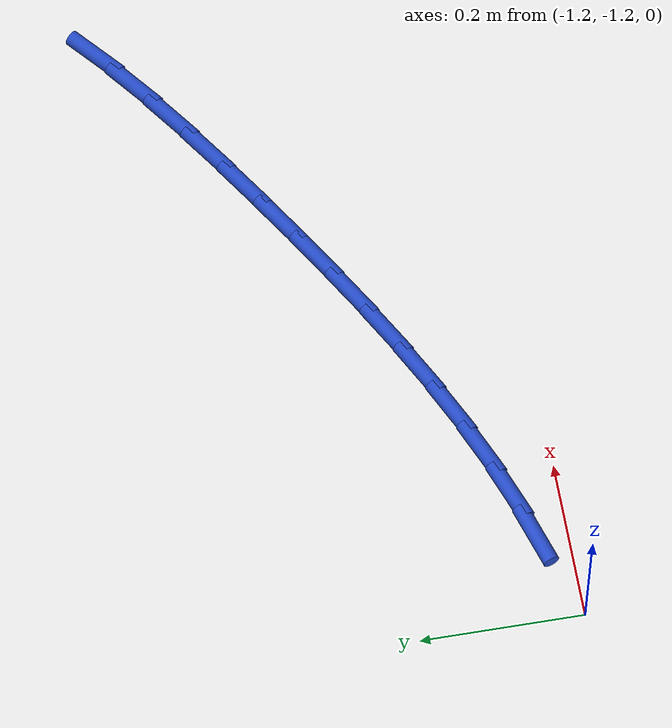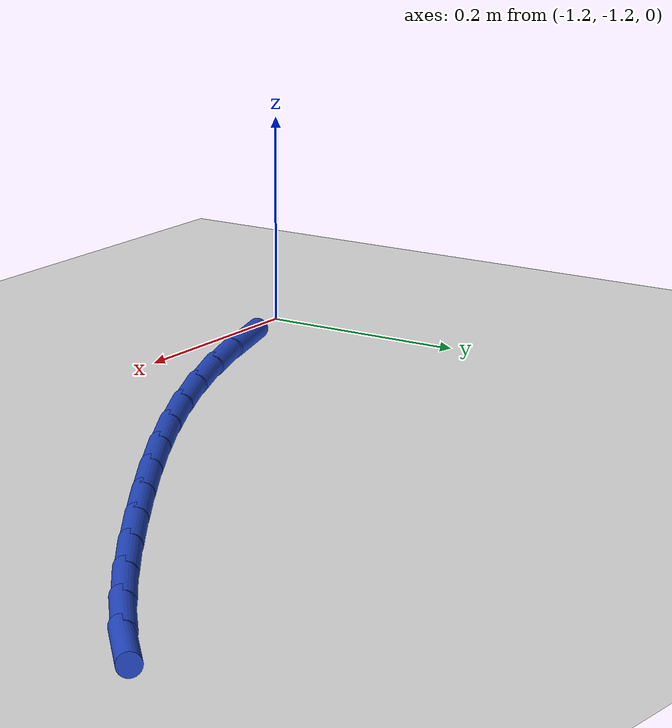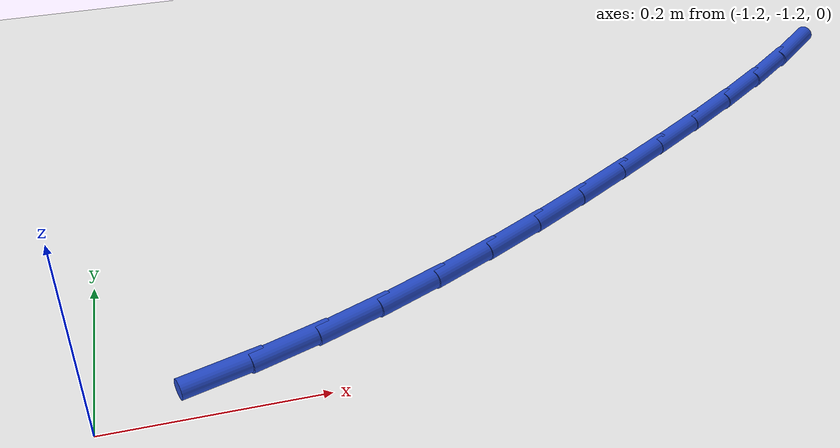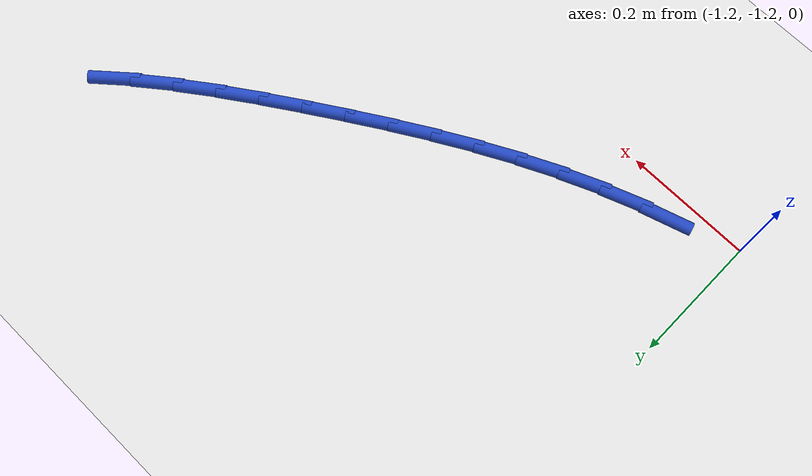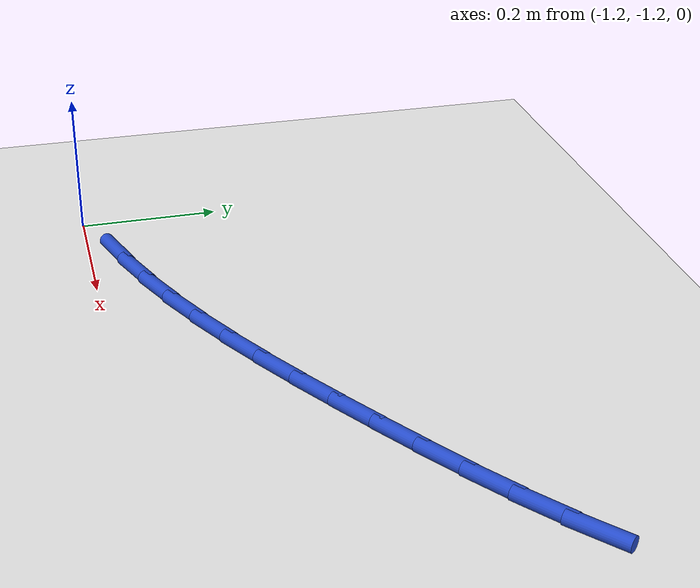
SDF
<sdf version="1.6">
 <world name="default">
  <model name="ground_plane">
   <static>1</static>
   <link name="link">
    <collision name="collision">
     <geometry><plane><normal>0 0 1</normal><size>100 100</size></plane></geometry>
     <surface><friction><ode><mu>100</mu><mu2>50</mu2></ode></friction></surface>
    </collision>
    <visual name="visual">
     <cast_shadows>0</cast_shadows>
     <geometry><plane><normal>0 0 1</normal><size>100 100</size></plane></geometry>
     <material>
      <script><uri>file://media/materials/scripts/gazebo.material</uri><name>Gazebo/WhiteGlow</name></script>
     </material>
    </visual>
   </link>
  </model>
  <model name="line">
   <link name="link_84">
    <pose>-1.0907373495085135 -1.1602485015638753 0.01 0 1.57 0.30592249337320293</pose>
    <collision name="collision">
     <geometry><cylinder><radius>0.01</radius><length>0.08</length></cylinder></geometry>
    </collision>
    <visual name="visual">
     <material>
      <script><name>Gazebo/Blue</name><uri>file://media/materials/scripts/gazebo.material</uri></script>
     </material>
     <geometry><cylinder><radius>0.01</radius><length>0.08</length></cylinder></geometry>
    </visual>
   </link>
   <link name="link_85">
    <pose>-1.028746569607572 -1.1406694919379672 0.01 0 1.57 0.3592306607450275</pose>
    <collision name="collision">
     <geometry><cylinder><radius>0.01</radius><length>0.08</length></cylinder></geometry>
    </collision>
    <visual name="visual">
     <material>
      <script><name>Gazebo/Blue</name><uri>file://media/materials/scripts/gazebo.material</uri></script>
     </material>
     <geometry><cylinder><radius>0.01</radius><length>0.08</length></cylinder></geometry>
    </visual>
   </link>
   <link name="link_86">
    <pose>-0.9677904289458146 -1.1177789514070133 0.01 0 1.57 0.40653397699495586</pose>
    <collision name="collision">
     <geometry><cylinder><radius>0.01</radius><length>0.08</length></cylinder></geometry>
    </collision>
    <visual name="visual">
     <material>
      <script><name>Gazebo/Blue</name><uri>file://media/materials/scripts/gazebo.material</uri></script>
     </material>
     <geometry><cylinder><radius>0.01</radius><length>0.08</length></cylinder></geometry>
    </visual>
   </link>
   <link name="link_87">
    <pose>-0.9077856111844519 -1.0919458802660438 0.01 0 1.57 0.44780761443154643</pose>
    <collision name="collision">
     <geometry><cylinder><radius>0.01</radius><length>0.08</length></cylinder></geometry>
    </collision>
    <visual name="visual">
     <material>
      <script><name>Gazebo/Blue</name><uri>file://media/materials/scripts/gazebo.material</uri></script>
     </material>
     <geometry><cylinder><radius>0.01</radius><length>0.08</length></cylinder></geometry>
    </visual>
   </link>
   <link name="link_88">
    <pose>-0.8486487999846958 -1.0635392788100906 0.01 0 1.57 0.4831281210149153</pose>
    <collision name="collision">
     <geometry><cylinder><radius>0.01</radius><length>0.08</length></cylinder></geometry>
    </collision>
    <visual name="visual">
     <material>
      <script><name>Gazebo/Blue</name><uri>file://media/materials/scripts/gazebo.material</uri></script>
     </material>
     <geometry><cylinder><radius>0.01</radius><length>0.08</length></cylinder></geometry>
    </visual>
   </link>
   <link name="link_89">
    <pose>-0.7902966790077566 -1.0329281473341843 0.01 0 1.57 0.5126281359997871</pose>
    <collision name="collision">
     <geometry><cylinder><radius>0.01</radius><length>0.08</length></cylinder></geometry>
    </collision>
    <visual name="visual">
     <material>
      <script><name>Gazebo/Blue</name><uri>file://media/materials/scripts/gazebo.material</uri></script>
     </material>
     <geometry><cylinder><radius>0.01</radius><length>0.08</length></cylinder></geometry>
    </visual>
   </link>
   <link name="link_90">
    <pose>-0.7326459319148468 -1.000481486133356 0.01 0 1.57 0.5364595738722616</pose>
    <collision name="collision">
     <geometry><cylinder><radius>0.01</radius><length>0.08</length></cylinder></geometry>
    </collision>
    <visual name="visual">
     <material>
      <script><name>Gazebo/Blue</name><uri>file://media/materials/scripts/gazebo.material</uri></script>
     </material>
     <geometry><cylinder><radius>0.01</radius><length>0.08</length></cylinder></geometry>
    </visual>
   </link>
   <link name="link_91">
    <pose>-0.6756132423671762 -0.9665682955026357 0.01 0 1.57 0.5547654569081745</pose>
    <collision name="collision">
     <geometry><cylinder><radius>0.01</radius><length>0.08</length></cylinder></geometry>
    </collision>
    <visual name="visual">
     <material>
      <script><name>Gazebo/Blue</name><uri>file://media/materials/scripts/gazebo.material</uri></script>
     </material>
     <geometry><cylinder><radius>0.01</radius><length>0.08</length></cylinder></geometry>
    </visual>
   </link>
   <link name="link_92">
    <pose>-0.6191152940259578 -0.9315575757370563 0.01 0 1.57 0.5677848305855008</pose>
    <collision name="collision">
     <geometry><cylinder><radius>0.01</radius><length>0.08</length></cylinder></geometry>
    </collision>
    <visual name="visual">
     <material>
      <script><name>Gazebo/Blue</name><uri>file://media/materials/scripts/gazebo.material</uri></script>
     </material>
     <geometry><cylinder><radius>0.01</radius><length>0.08</length></cylinder></geometry>
    </visual>
   </link>
   <link name="link_93">
    <pose>-0.563073532257012 -0.8958114653986463 0.01 0 1.57 0.580950314397914</pose>
    <collision name="collision">
     <geometry><cylinder><radius>0.01</radius><length>0.08</length></cylinder></geometry>
    </collision>
    <visual name="visual">
     <material>
      <script><name>Gazebo/Blue</name><uri>file://media/materials/scripts/gazebo.material</uri></script>
     </material>
     <geometry><cylinder><radius>0.01</radius><length>0.08</length></cylinder></geometry>
    </visual>
   </link>
   <link name="link_94">
    <pose>-0.507612339568125 -0.8593996656561071 0.01 0 1.57 0.6016263845948574</pose>
    <collision name="collision">
     <geometry><cylinder><radius>0.01</radius><length>0.08</length></cylinder></geometry>
    </collision>
    <visual name="visual">
     <material>
      <script><name>Gazebo/Blue</name><uri>file://media/materials/scripts/gazebo.material</uri></script>
     </material>
     <geometry><cylinder><radius>0.01</radius><length>0.08</length></cylinder></geometry>
    </visual>
   </link>
   <link name="link_95">
    <pose>-0.4531305237509187 -0.8219964241209766 0.01 0 1.57 0.6305415296834114</pose>
    <collision name="collision">
     <geometry><cylinder><radius>0.01</radius><length>0.08</length></cylinder></geometry>
    </collision>
    <visual name="visual">
     <material>
      <script><name>Gazebo/Blue</name><uri>file://media/materials/scripts/gazebo.material</uri></script>
     </material>
     <geometry><cylinder><radius>0.01</radius><length>0.08</length></cylinder></geometry>
    </visual>
   </link>
   <link name="link_96">
    <pose>-0.40004636136470606 -0.7832479334335914 0.01 0 1.57 0.6679604170802597</pose>
    <collision name="collision">
     <geometry><cylinder><radius>0.01</radius><length>0.08</length></cylinder></geometry>
    </collision>
    <visual name="visual">
     <material>
      <script><name>Gazebo/Blue</name><uri>file://media/materials/scripts/gazebo.material</uri></script>
     </material>
     <geometry><cylinder><radius>0.01</radius><length>0.08</length></cylinder></geometry>
    </visual>
   </link>
   <link name="link_97">
    <pose>-0.34877812896879773 -0.7428003862342865 0.01 0 1.57 0.7141402555080225</pose>
    <collision name="collision">
     <geometry><cylinder><radius>0.01</radius><length>0.08</length></cylinder></geometry>
    </collision>
    <visual name="visual">
     <material>
      <script><name>Gazebo/Blue</name><uri>file://media/materials/scripts/gazebo.material</uri></script>
     </material>
     <geometry><cylinder><radius>0.01</radius><length>0.08</length></cylinder></geometry>
    </visual>
   </link>
  </model>
 </world>
</sdf>
